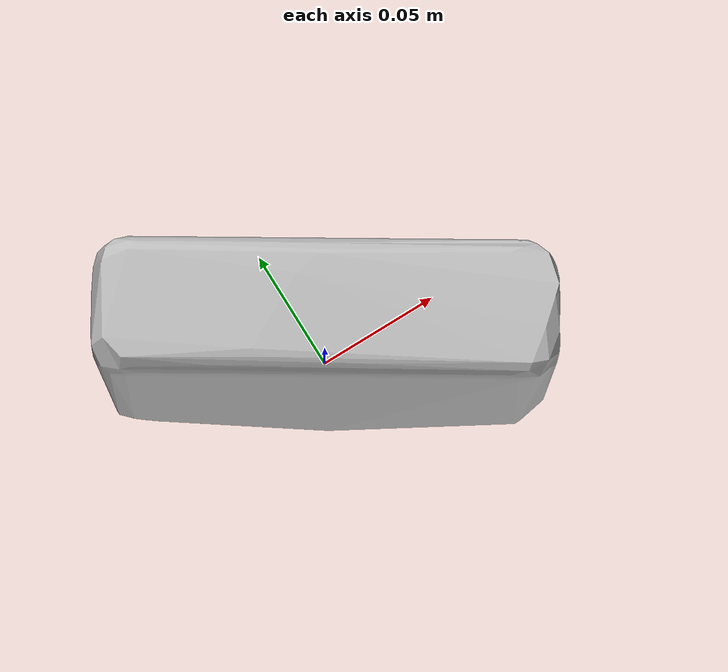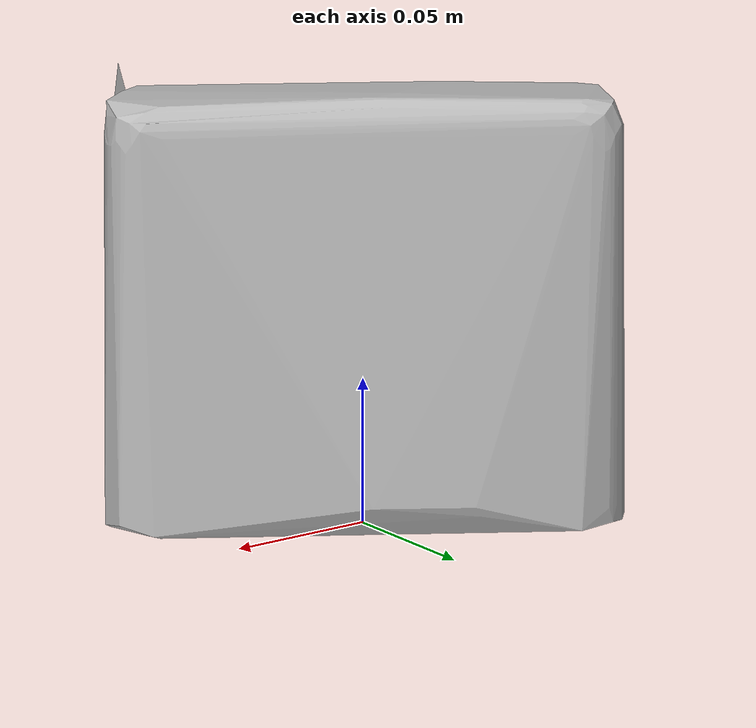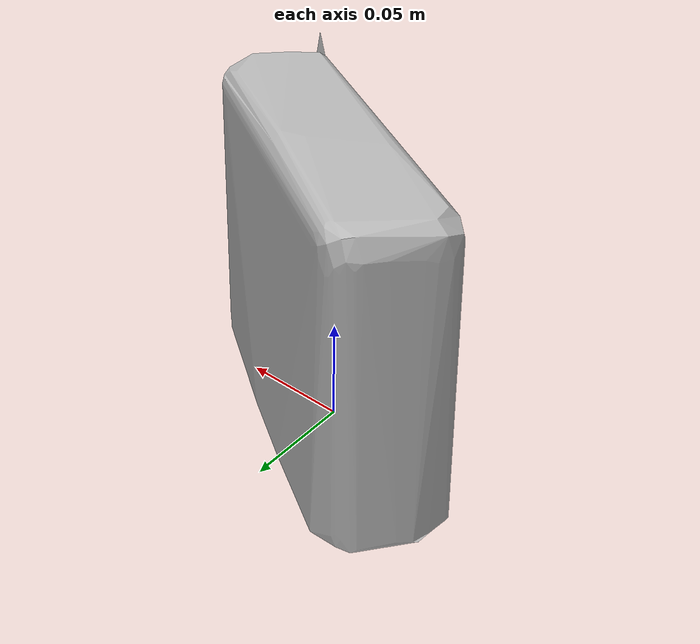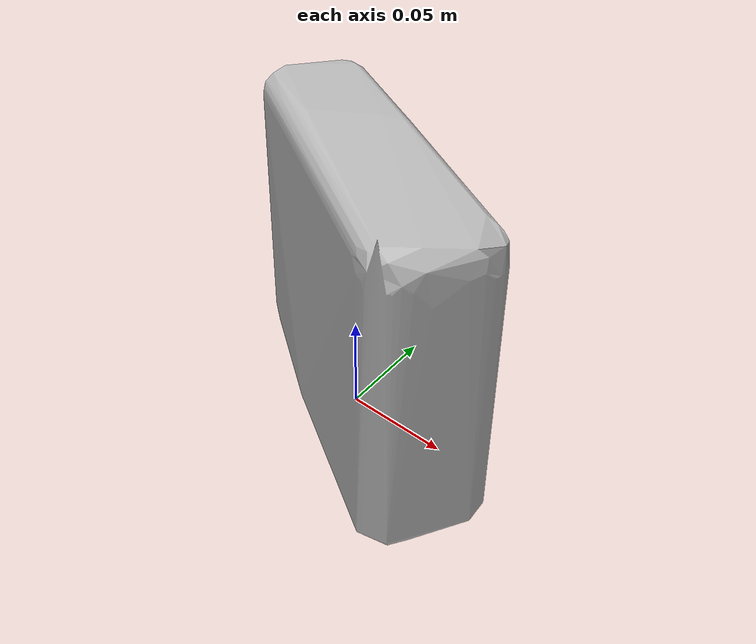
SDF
<?xml version='1.0'?>
<sdf version="1.4">
  <model name="nature_valley_crunchy_variety_pack">
    <static>false</static>
    <link name="link">
      <inertial>
        <pose>0.002226594158089657 0.003223741134713673 0.07358099053128593 -1.5741971574104374 -0.004323825854417666 1.0063686177499467</pose>
        <mass>0.12994249499489008</mass>
        <inertia>
          <ixx>0.000503818850595667</ixx>
          <ixy>-3.6098306528653586e-21</ixy>
          <ixz>3.4681313804611494e-20</ixz>
          <iyy>0.00032578571985895845</iyy>
          <iyz>-3.289237210354813e-22</iyz>
          <izz>0.00024391740107732501</izz>
        </inertia>
      </inertial>
      <collision name="collision">
        <geometry>
          <mesh>
            <!-- Use a downsampled mesh for collisions -->
            <uri>model:///nature_valley_crunchy_variety_pack/nature_valley_crunchy_variety_pack_250_collision.obj</uri>
	        </mesh>
        </geometry>
        <surface>
      </surface>
      </collision>
      <visual name="visual">
        <geometry>
          <mesh>
            <uri>model:///nature_valley_crunchy_variety_pack/optimized_tsdf_texture_mapped_mesh.obj</uri>
	        </mesh>
        </geometry>
        <material>
          <script>
            <uri>model:///nature_valley_crunchy_variety_pack/nature_valley_crunchy_variety_pack.material</uri>
            <name>nature_valley_crunchy_variety_pack</name>
          </script>
        </material>
      </visual>
    </link>
  </model>
</sdf>
